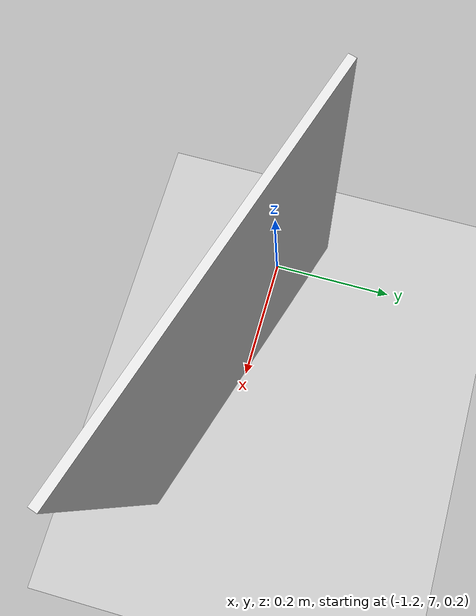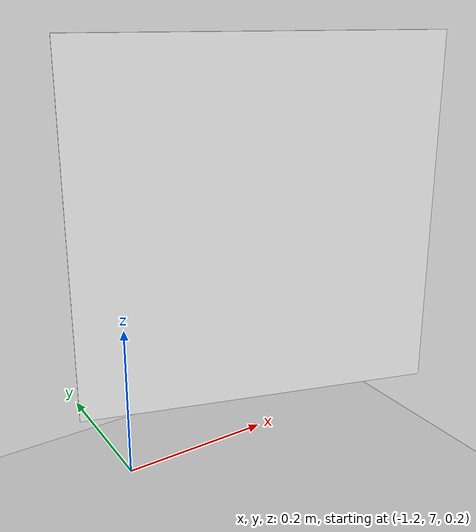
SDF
<sdf version='1.4'>
  <world name='default'>
    <!-- A global light source -->
    <include>
      <uri>model://sun</uri>
    </include>

    <!-- A ground plane -->
    <include>
      <uri>model://ground_plane</uri>
    </include>

    <physics type="ode">
      <real_time_update_rate>1000.0</real_time_update_rate>
      <max_step_size>0.001</max_step_size>
      <real_time_factor>1</real_time_factor>
      <ode>
        <solver>
          <type>quick</type>
          <iters>150</iters>
          <precon_iters>0</precon_iters>
          <sor>1.400000</sor>
          <use_dynamic_moi_rescaling>1</use_dynamic_moi_rescaling>
        </solver>
        <constraints>
          <cfm>0.00001</cfm>
          <erp>0.2</erp>
          <contact_max_correcting_vel>2000.000000</contact_max_correcting_vel>
          <contact_surface_layer>0.01000</contact_surface_layer>
        </constraints>
      </ode>
    </physics>

    <!-- Load world -->
    <include>
      <uri>model://turtlebot3_test</uri>
    </include>

    <scene>
      <ambient>0.4 0.4 0.4 1</ambient>
      <background>0.7 0.7 0.7 1</background>
      <shadows>true</shadows>
    </scene>

    <gui fullscreen='0'>
      <camera name='user_camera'>
        <pose>0.8 0.0 12.0 0 1.5708 0</pose>
        <view_controller>orbit</view_controller>
      </camera>
    </gui>
  </world>
</sdf>

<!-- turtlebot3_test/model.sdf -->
<sdf version='1.5'>
    <!-- Draw Circle -->
    <model name='ros_symbol'>
      <static>1</static>
      <link name='symbol'>

        <collision name='square_plane'>
          <pose>-1 7 0.5 0 0 -0.3</pose>
          <geometry>
            <box>
              <size>0.5 0.01 0.5</size>
            </box>
          </geometry>
          <max_contacts>10</max_contacts>
          <surface>
            <bounce/>
            <friction>
              <ode/>
            </friction>
            <contact>
              <ode/>
            </contact>
          </surface>
        </collision>

        <visual name='square_plane'>
          <pose>-1 7 0.5 0 0 -0.3</pose>
          <geometry>
            <box>
              <size>0.5 0.01 0.5</size>
            </box>
          </geometry>
          <material>
            <script>
              <uri>file://media/materials/scripts/gazebo.material</uri>
              <name>Gazebo/White</name>
            </script>
          </material>
        </visual>
    </link>
  </model>
</sdf>
